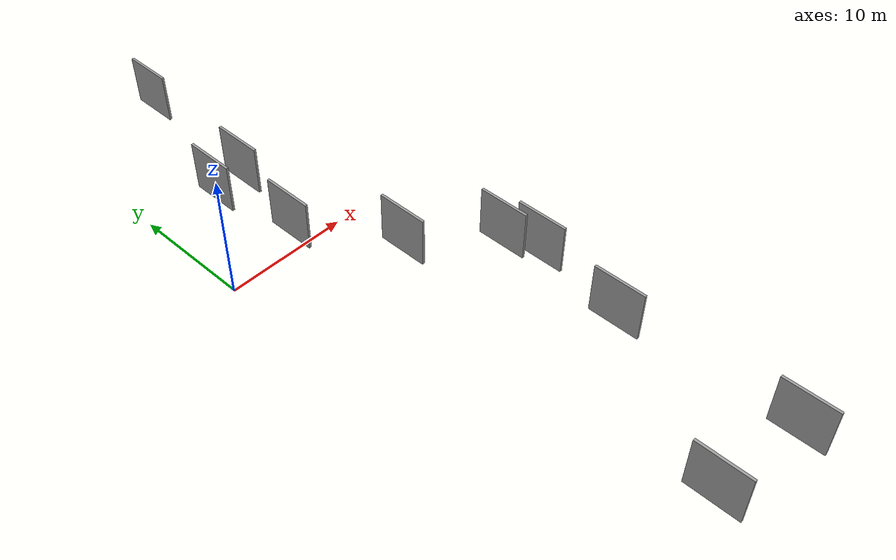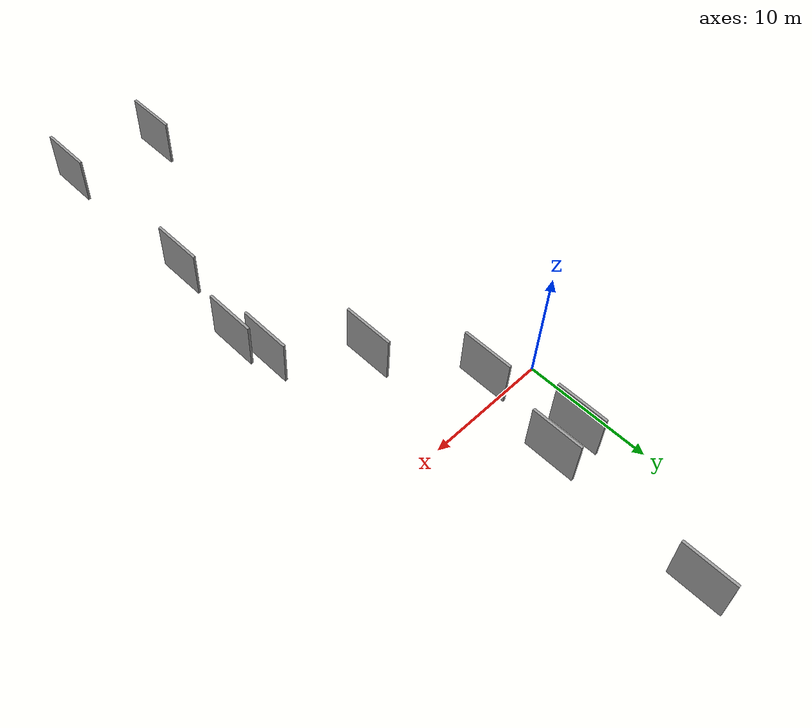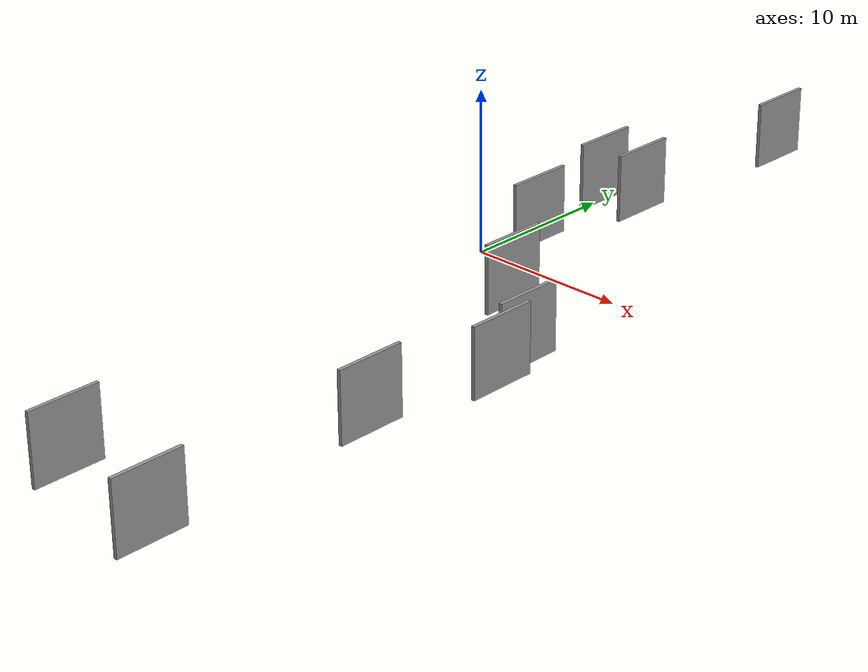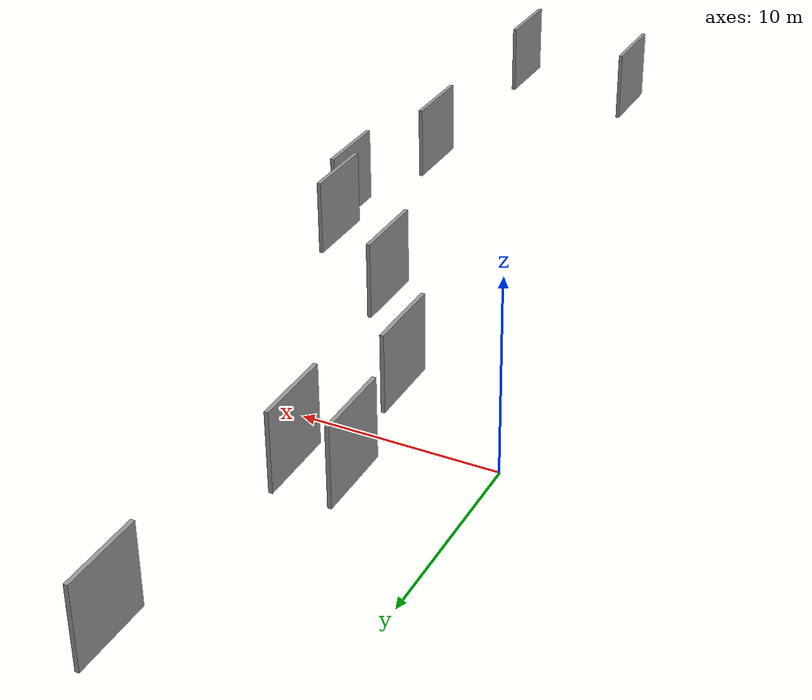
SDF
<sdf version="1.6">
 <world name="default">
  <scene>
   <sky><clouds><speed>12</speed></clouds></sky>
   <ambient>0.4 0.4 0.4 1</ambient>
   <background>0.7 0.7 0.7 1</background>
   <shadows>1</shadows>
  </scene>
  <gravity>0 0 -9.8066</gravity>
  <magnetic_field>6e-06 2.3e-05 -4.2e-05</magnetic_field>
  <physics default="0" name="default_physics" type="ode">
   <ode>
    <solver>
     <type>quick</type>
     <iters>10</iters>
     <sor>1.0</sor>
     <use_dynamic_moi_rescaling>0</use_dynamic_moi_rescaling>
    </solver>
    <constraints>
     <cfm>0</cfm>
     <erp>0.2</erp>
     <contact_max_correcting_vel>100</contact_max_correcting_vel>
     <contact_surface_layer>0.001</contact_surface_layer>
    </constraints>
   </ode>
   <max_step_size>0.004</max_step_size>
   <real_time_factor>1</real_time_factor>
   <real_time_update_rate>250</real_time_update_rate>
  </physics>
  <light name="sun" type="directional">
   <pose>0 0 10 0 0 0</pose>
   <diffuse>0.8 0.8 0.8 1</diffuse>
   <specular>0.2 0.2 0.2 1</specular>
   <attenuation>
    <range>1000</range>
    <constant>0.9</constant>
    <linear>0.01</linear>
    <quadratic>0.001</quadratic>
   </attenuation>
   <direction>-0.5 0.1 -0.9</direction>
  </light>
  <model name="grey_wall_1">
   <static>1</static>
   <pose>14.0940 -22.4979 2.5 0.000000 0.000000 1.570796</pose>
   <link name="link">
    <pose>0 0 2.00 0 0 0</pose>
    <collision name="collision"><geometry><box><size>4.00 0.2 4.00</size></box></geometry></collision>
    <visual name="visual">
     <cast_shadows>0</cast_shadows>
     <geometry><box><size>4.00 0.2 4.00</size></box></geometry>
     <material>
      <script>
       <uri>model://grey_wall/materials/scripts</uri>
       <uri>model://grey_wall/materials/textures</uri>
       <name>vrc/grey_wall</name>
      </script>
     </material>
    </visual>
   </link>
  </model>
  <model name="grey_wall_2">
   <static>1</static>
   <pose>7.2911 18.5230 2.5 0.000000 0.000000 1.570796</pose>
   <link name="link">
    <pose>0 0 2.00 0 0 0</pose>
    <collision name="collision"><geometry><box><size>4.00 0.2 4.00</size></box></geometry></collision>
    <visual name="visual">
     <cast_shadows>0</cast_shadows>
     <geometry><box><size>4.00 0.2 4.00</size></box></geometry>
     <material>
      <script>
       <uri>model://grey_wall/materials/scripts</uri>
       <uri>model://grey_wall/materials/textures</uri>
       <name>vrc/grey_wall</name>
      </script>
     </material>
    </visual>
   </link>
  </model>
  <model name="grey_wall_3">
   <static>1</static>
   <pose>9.4390 -7.5966 2.5 0.000000 0.000000 1.570796</pose>
   <link name="link">
    <pose>0 0 2.00 0 0 0</pose>
    <collision name="collision"><geometry><box><size>4.00 0.2 4.00</size></box></geometry></collision>
    <visual name="visual">
     <cast_shadows>0</cast_shadows>
     <geometry><box><size>4.00 0.2 4.00</size></box></geometry>
     <material>
      <script>
       <uri>model://grey_wall/materials/scripts</uri>
       <uri>model://grey_wall/materials/textures</uri>
       <name>vrc/grey_wall</name>
      </script>
     </material>
    </visual>
   </link>
  </model>
  <model name="grey_wall_4">
   <static>1</static>
   <pose>6.5236 6.4916 2.5 0.000000 0.000000 1.570796</pose>
   <link name="link">
    <pose>0 0 2.00 0 0 0</pose>
    <collision name="collision"><geometry><box><size>4.00 0.2 4.00</size></box></geometry></collision>
    <visual name="visual">
     <cast_shadows>0</cast_shadows>
     <geometry><box><size>4.00 0.2 4.00</size></box></geometry>
     <material>
      <script>
       <uri>model://grey_wall/materials/scripts</uri>
       <uri>model://grey_wall/materials/textures</uri>
       <name>vrc/grey_wall</name>
      </script>
     </material>
    </visual>
   </link>
  </model>
  <model name="grey_wall_5">
   <static>1</static>
   <pose>14.3166 -35.9653 2.5 0.000000 0.000000 1.570796</pose>
   <link name="link">
    <pose>0 0 2.00 0 0 0</pose>
    <collision name="collision"><geometry><box><size>4.00 0.2 4.00</size></box></geometry></collision>
    <visual name="visual">
     <cast_shadows>0</cast_shadows>
     <geometry><box><size>4.00 0.2 4.00</size></box></geometry>
     <material>
      <script>
       <uri>model://grey_wall/materials/scripts</uri>
       <uri>model://grey_wall/materials/textures</uri>
       <name>vrc/grey_wall</name>
      </script>
     </material>
    </visual>
   </link>
  </model>
  <model name="grey_wall_6">
   <static>1</static>
   <pose>5.0824 -0.6872 2.5 0.000000 0.000000 1.570796</pose>
   <link name="link">
    <pose>0 0 2.00 0 0 0</pose>
    <collision name="collision"><geometry><box><size>4.00 0.2 4.00</size></box></geometry></collision>
    <visual name="visual">
     <cast_shadows>0</cast_shadows>
     <geometry><box><size>4.00 0.2 4.00</size></box></geometry>
     <material>
      <script>
       <uri>model://grey_wall/materials/scripts</uri>
       <uri>model://grey_wall/materials/textures</uri>
       <name>vrc/grey_wall</name>
      </script>
     </material>
    </visual>
   </link>
  </model>
  <model name="grey_wall_7">
   <static>1</static>
   <pose>15.4837 -14.9584 2.5 0.000000 0.000000 1.570796</pose>
   <link name="link">
    <pose>0 0 2.00 0 0 0</pose>
    <collision name="collision"><geometry><box><size>4.00 0.2 4.00</size></box></geometry></collision>
    <visual name="visual">
     <cast_shadows>0</cast_shadows>
     <geometry><box><size>4.00 0.2 4.00</size></box></geometry>
     <material>
      <script>
       <uri>model://grey_wall/materials/scripts</uri>
       <uri>model://grey_wall/materials/textures</uri>
       <name>vrc/grey_wall</name>
      </script>
     </material>
    </visual>
   </link>
  </model>
  <model name="grey_wall_8">
   <static>1</static>
   <pose>6.9596 -34.8230 2.5 0.000000 0.000000 1.570796</pose>
   <link name="link">
    <pose>0 0 2.00 0 0 0</pose>
    <collision name="collision"><geometry><box><size>4.00 0.2 4.00</size></box></geometry></collision>
    <visual name="visual">
     <cast_shadows>0</cast_shadows>
     <geometry><box><size>4.00 0.2 4.00</size></box></geometry>
     <material>
      <script>
       <uri>model://grey_wall/materials/scripts</uri>
       <uri>model://grey_wall/materials/textures</uri>
       <name>vrc/grey_wall</name>
      </script>
     </material>
    </visual>
   </link>
  </model>
  <model name="grey_wall_9">
   <static>1</static>
   <pose>3.8472 6.3269 2.5 0.000000 0.000000 1.570796</pose>
   <link name="link">
    <pose>0 0 2.00 0 0 0</pose>
    <collision name="collision"><geometry><box><size>4.00 0.2 4.00</size></box></geometry></collision>
    <visual name="visual">
     <cast_shadows>0</cast_shadows>
     <geometry><box><size>4.00 0.2 4.00</size></box></geometry>
     <material>
      <script>
       <uri>model://grey_wall/materials/scripts</uri>
       <uri>model://grey_wall/materials/textures</uri>
       <name>vrc/grey_wall</name>
      </script>
     </material>
    </visual>
   </link>
  </model>
  <model name="grey_wall_10">
   <static>1</static>
   <pose>14.7175 -12.2085 2.5 0.000000 0.000000 1.570796</pose>
   <link name="link">
    <pose>0 0 2.00 0 0 0</pose>
    <collision name="collision"><geometry><box><size>4.00 0.2 4.00</size></box></geometry></collision>
    <visual name="visual">
     <cast_shadows>0</cast_shadows>
     <geometry><box><size>4.00 0.2 4.00</size></box></geometry>
     <material>
      <script>
       <uri>model://grey_wall/materials/scripts</uri>
       <uri>model://grey_wall/materials/textures</uri>
       <name>vrc/grey_wall</name>
      </script>
     </material>
    </visual>
   </link>
  </model>
 </world>
</sdf>
